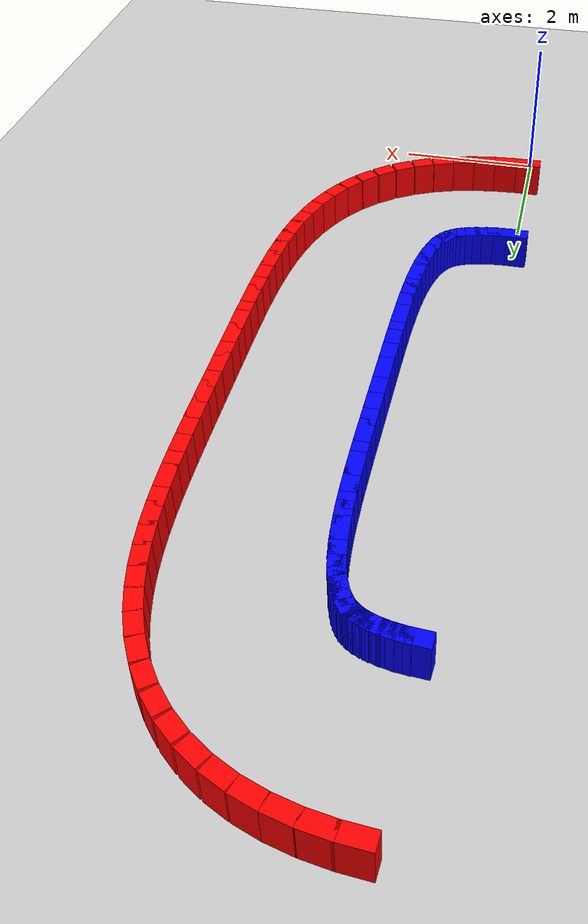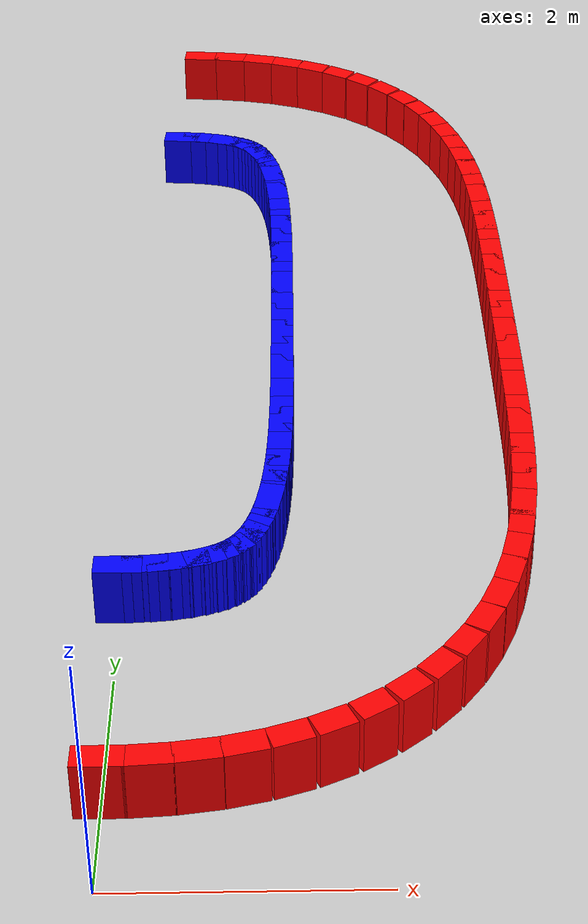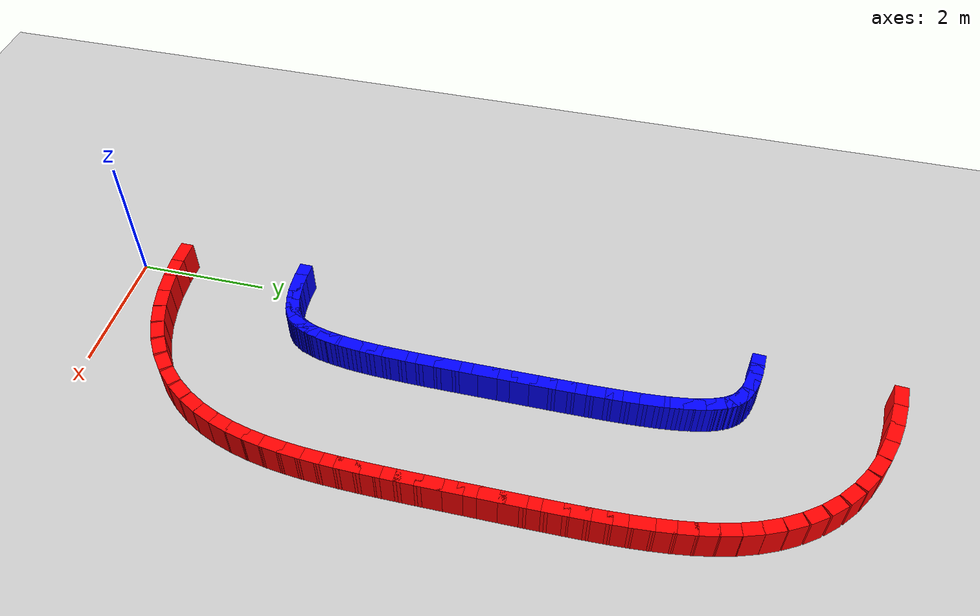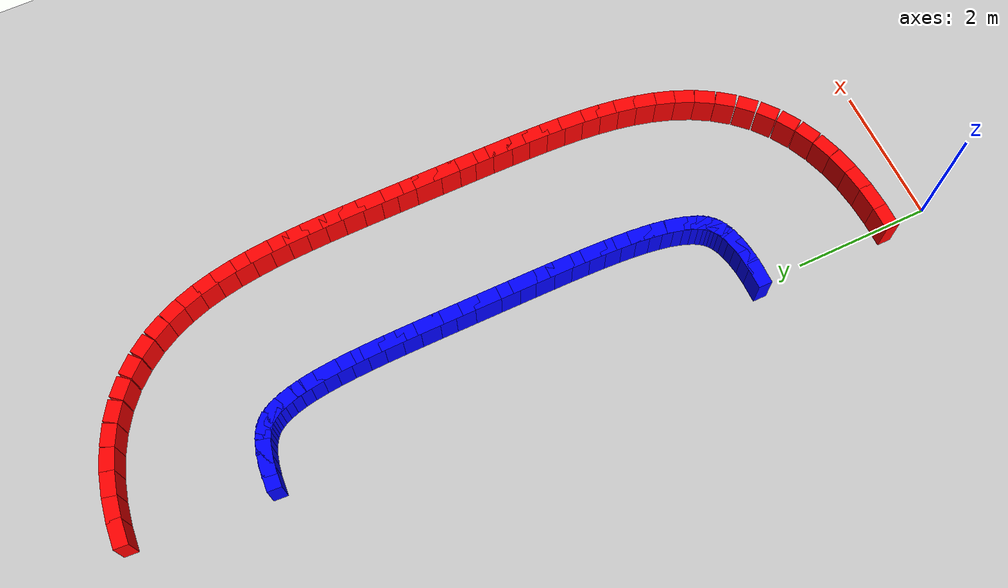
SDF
<sdf version="1.9">
 <world name="kidney_track">
  <model name="ground_plane">
   <static>true</static>
   <link name="link">
    <collision name="collision">
     <geometry><plane><normal>0 0 1</normal><size>100 100</size></plane></geometry>
    </collision>
    <visual name="visual">
     <geometry><plane><normal>0 0 1</normal><size>100 100</size></plane></geometry>
     <material><ambient>0.8 0.8 0.8 1</ambient><diffuse>0.8 0.8 0.8 1</diffuse></material>
    </visual>
   </link>
  </model>
  <model name="track">
   <static>true</static>
   <link name="outer_0">
    <pose>3.2500 6.2500 0.25 0 0 1.5708</pose>
    <collision name="col"><geometry><box><size>0.3826 0.2 0.5</size></box></geometry></collision>
    <visual name="vis">
     <geometry><box><size>0.3826 0.2 0.5</size></box></geometry>
     <material><ambient>1 0 0 1</ambient></material>
    </visual>
   </link>
   <link name="inner_0">
    <pose>1.2500 6.2500 0.25 0 0 1.5708</pose>
    <collision name="col"><geometry><box><size>0.3826 0.2 0.5</size></box></geometry></collision>
    <visual name="vis">
     <geometry><box><size>0.3826 0.2 0.5</size></box></geometry>
     <material><ambient>0 0 1 1</ambient></material>
    </visual>
   </link>
   <link name="outer_1">
    <pose>3.2500 6.5327 0.25 0 0 1.5709</pose>
    <collision name="col"><geometry><box><size>0.3814 0.2 0.5</size></box></geometry></collision>
    <visual name="vis">
     <geometry><box><size>0.3814 0.2 0.5</size></box></geometry>
     <material><ambient>1 0 0 1</ambient></material>
    </visual>
   </link>
   <link name="inner_1">
    <pose>1.2500 6.5324 0.25 0 0 1.5709</pose>
    <collision name="col"><geometry><box><size>0.3814 0.2 0.5</size></box></geometry></collision>
    <visual name="vis">
     <geometry><box><size>0.3814 0.2 0.5</size></box></geometry>
     <material><ambient>0 0 1 1</ambient></material>
    </visual>
   </link>
   <link name="outer_2">
    <pose>3.2499 6.8150 0.25 0 0 1.5718</pose>
    <collision name="col"><geometry><box><size>0.3792 0.2 0.5</size></box></geometry></collision>
    <visual name="vis">
     <geometry><box><size>0.3792 0.2 0.5</size></box></geometry>
     <material><ambient>1 0 0 1</ambient></material>
    </visual>
   </link>
   <link name="inner_2">
    <pose>1.2499 6.8130 0.25 0 0 1.5718</pose>
    <collision name="col"><geometry><box><size>0.3792 0.2 0.5</size></box></geometry></collision>
    <visual name="vis">
     <geometry><box><size>0.3792 0.2 0.5</size></box></geometry>
     <material><ambient>0 0 1 1</ambient></material>
    </visual>
   </link>
   <link name="outer_3">
    <pose>3.2493 7.0966 0.25 0 0 1.5742</pose>
    <collision name="col"><geometry><box><size>0.3759 0.2 0.5</size></box></geometry></collision>
    <visual name="vis">
     <geometry><box><size>0.3759 0.2 0.5</size></box></geometry>
     <material><ambient>1 0 0 1</ambient></material>
    </visual>
   </link>
   <link name="inner_3">
    <pose>1.2493 7.0898 0.25 0 0 1.5742</pose>
    <collision name="col"><geometry><box><size>0.3759 0.2 0.5</size></box></geometry></collision>
    <visual name="vis">
     <geometry><box><size>0.3759 0.2 0.5</size></box></geometry>
     <material><ambient>0 0 1 1</ambient></material>
    </visual>
   </link>
   <link name="outer_4">
    <pose>3.2477 7.3772 0.25 0 0 1.5789</pose>
    <collision name="col"><geometry><box><size>0.3715 0.2 0.5</size></box></geometry></collision>
    <visual name="vis">
     <geometry><box><size>0.3715 0.2 0.5</size></box></geometry>
     <material><ambient>1 0 0 1</ambient></material>
    </visual>
   </link>
   <link name="inner_4">
    <pose>1.2478 7.3610 0.25 0 0 1.5789</pose>
    <collision name="col"><geometry><box><size>0.3715 0.2 0.5</size></box></geometry></collision>
    <visual name="vis">
     <geometry><box><size>0.3715 0.2 0.5</size></box></geometry>
     <material><ambient>0 0 1 1</ambient></material>
    </visual>
   </link>
   <link name="outer_5">
    <pose>3.2445 7.6565 0.25 0 0 1.5867</pose>
    <collision name="col"><geometry><box><size>0.3660 0.2 0.5</size></box></geometry></collision>
    <visual name="vis">
     <geometry><box><size>0.3660 0.2 0.5</size></box></geometry>
     <material><ambient>1 0 0 1</ambient></material>
    </visual>
   </link>
   <link name="inner_5">
    <pose>1.2447 7.6247 0.25 0 0 1.5867</pose>
    <collision name="col"><geometry><box><size>0.3660 0.2 0.5</size></box></geometry></collision>
    <visual name="vis">
     <geometry><box><size>0.3660 0.2 0.5</size></box></geometry>
     <material><ambient>0 0 1 1</ambient></material>
    </visual>
   </link>
   <link name="outer_6">
    <pose>3.2385 7.9344 0.25 0 0 1.5986</pose>
    <collision name="col"><geometry><box><size>0.3596 0.2 0.5</size></box></geometry></collision>
    <visual name="vis">
     <geometry><box><size>0.3596 0.2 0.5</size></box></geometry>
     <material><ambient>1 0 0 1</ambient></material>
    </visual>
   </link>
   <link name="inner_6">
    <pose>1.2393 7.8787 0.25 0 0 1.5986</pose>
    <collision name="col"><geometry><box><size>0.3596 0.2 0.5</size></box></geometry></collision>
    <visual name="vis">
     <geometry><box><size>0.3596 0.2 0.5</size></box></geometry>
     <material><ambient>0 0 1 1</ambient></material>
    </visual>
   </link>
   <link name="outer_7">
    <pose>3.2286 8.2108 0.25 0 0 1.6156</pose>
    <collision name="col"><geometry><box><size>0.3523 0.2 0.5</size></box></geometry></collision>
    <visual name="vis">
     <geometry><box><size>0.3523 0.2 0.5</size></box></geometry>
     <material><ambient>1 0 0 1</ambient></material>
    </visual>
   </link>
   <link name="inner_7">
    <pose>1.2306 8.1212 0.25 0 0 1.6156</pose>
    <collision name="col"><geometry><box><size>0.3523 0.2 0.5</size></box></geometry></collision>
    <visual name="vis">
     <geometry><box><size>0.3523 0.2 0.5</size></box></geometry>
     <material><ambient>0 0 1 1</ambient></material>
    </visual>
   </link>
   <link name="outer_8">
    <pose>3.2133 8.4858 0.25 0 0 1.6387</pose>
    <collision name="col"><geometry><box><size>0.3442 0.2 0.5</size></box></geometry></collision>
    <visual name="vis">
     <geometry><box><size>0.3442 0.2 0.5</size></box></geometry>
     <material><ambient>1 0 0 1</ambient></material>
    </visual>
   </link>
   <link name="inner_8">
    <pose>1.2179 8.3500 0.25 0 0 1.6387</pose>
    <collision name="col"><geometry><box><size>0.3442 0.2 0.5</size></box></geometry></collision>
    <visual name="vis">
     <geometry><box><size>0.3442 0.2 0.5</size></box></geometry>
     <material><ambient>0 0 1 1</ambient></material>
    </visual>
   </link>
   <link name="outer_9">
    <pose>3.1906 8.7596 0.25 0 0 1.6693</pose>
    <collision name="col"><geometry><box><size>0.3354 0.2 0.5</size></box></geometry></collision>
    <visual name="vis">
     <geometry><box><size>0.3354 0.2 0.5</size></box></geometry>
     <material><ambient>1 0 0 1</ambient></material>
    </visual>
   </link>
   <link name="inner_9">
    <pose>1.2003 8.5629 0.25 0 0 1.6693</pose>
    <collision name="col"><geometry><box><size>0.3354 0.2 0.5</size></box></geometry></collision>
    <visual name="vis">
     <geometry><box><size>0.3354 0.2 0.5</size></box></geometry>
     <material><ambient>0 0 1 1</ambient></material>
    </visual>
   </link>
   <link name="outer_10">
    <pose>3.1584 9.0325 0.25 0 0 1.7087</pose>
    <collision name="col"><geometry><box><size>0.3263 0.2 0.5</size></box></geometry></collision>
    <visual name="vis">
     <geometry><box><size>0.3263 0.2 0.5</size></box></geometry>
     <material><ambient>1 0 0 1</ambient></material>
    </visual>
   </link>
   <link name="inner_10">
    <pose>1.1774 8.7576 0.25 0 0 1.7087</pose>
    <collision name="col"><geometry><box><size>0.3263 0.2 0.5</size></box></geometry></collision>
    <visual name="vis">
     <geometry><box><size>0.3263 0.2 0.5</size></box></geometry>
     <material><ambient>0 0 1 1</ambient></material>
    </visual>
   </link>
   <link name="outer_11">
    <pose>3.1140 9.3050 0.25 0 0 1.7584</pose>
    <collision name="col"><geometry><box><size>0.3172 0.2 0.5</size></box></geometry></collision>
    <visual name="vis">
     <geometry><box><size>0.3172 0.2 0.5</size></box></geometry>
     <material><ambient>1 0 0 1</ambient></material>
    </visual>
   </link>
   <link name="inner_11">
    <pose>1.1491 8.9319 0.25 0 0 1.7584</pose>
    <collision name="col"><geometry><box><size>0.3172 0.2 0.5</size></box></geometry></collision>
    <visual name="vis">
     <geometry><box><size>0.3172 0.2 0.5</size></box></geometry>
     <material><ambient>0 0 1 1</ambient></material>
    </visual>
   </link>
   <link name="outer_12">
    <pose>3.0538 9.5771 0.25 0 0 1.8201</pose>
    <collision name="col"><geometry><box><size>0.3083 0.2 0.5</size></box></geometry></collision>
    <visual name="vis">
     <geometry><box><size>0.3083 0.2 0.5</size></box></geometry>
     <material><ambient>1 0 0 1</ambient></material>
    </visual>
   </link>
   <link name="inner_12">
    <pose>1.1156 9.0838 0.25 0 0 1.8201</pose>
    <collision name="col"><geometry><box><size>0.3083 0.2 0.5</size></box></geometry></collision>
    <visual name="vis">
     <geometry><box><size>0.3083 0.2 0.5</size></box></geometry>
     <material><ambient>0 0 1 1</ambient></material>
    </visual>
   </link>
   <link name="outer_13">
    <pose>2.9740 9.8488 0.25 0 0 1.8949</pose>
    <collision name="col"><geometry><box><size>0.3003 0.2 0.5</size></box></geometry></collision>
    <visual name="vis">
     <geometry><box><size>0.3003 0.2 0.5</size></box></geometry>
     <material><ambient>1 0 0 1</ambient></material>
    </visual>
   </link>
   <link name="inner_13">
    <pose>1.0782 9.2119 0.25 0 0 1.8949</pose>
    <collision name="col"><geometry><box><size>0.3003 0.2 0.5</size></box></geometry></collision>
    <visual name="vis">
     <geometry><box><size>0.3003 0.2 0.5</size></box></geometry>
     <material><ambient>0 0 1 1</ambient></material>
    </visual>
   </link>
   <link name="outer_14">
    <pose>2.8701 10.1188 0.25 0 0 1.9839</pose>
    <collision name="col"><geometry><box><size>0.2937 0.2 0.5</size></box></geometry></collision>
    <visual name="vis">
     <geometry><box><size>0.2937 0.2 0.5</size></box></geometry>
     <material><ambient>1 0 0 1</ambient></material>
    </visual>
   </link>
   <link name="inner_14">
    <pose>1.0383 9.3159 0.25 0 0 1.9839</pose>
    <collision name="col"><geometry><box><size>0.2937 0.2 0.5</size></box></geometry></collision>
    <visual name="vis">
     <geometry><box><size>0.2937 0.2 0.5</size></box></geometry>
     <material><ambient>0 0 1 1</ambient></material>
    </visual>
   </link>
   <link name="outer_15">
    <pose>2.7374 10.3841 0.25 0 0 2.0869</pose>
    <collision name="col"><geometry><box><size>0.2891 0.2 0.5</size></box></geometry></collision>
    <visual name="vis">
     <geometry><box><size>0.2891 0.2 0.5</size></box></geometry>
     <material><ambient>1 0 0 1</ambient></material>
    </visual>
   </link>
   <link name="inner_15">
    <pose>0.9979 9.3971 0.25 0 0 2.0869</pose>
    <collision name="col"><geometry><box><size>0.2891 0.2 0.5</size></box></geometry></collision>
    <visual name="vis">
     <geometry><box><size>0.2891 0.2 0.5</size></box></geometry>
     <material><ambient>0 0 1 1</ambient></material>
    </visual>
   </link>
   <link name="outer_16">
    <pose>2.5723 10.6399 0.25 0 0 2.2023</pose>
    <collision name="col"><geometry><box><size>0.2871 0.2 0.5</size></box></geometry></collision>
    <visual name="vis">
     <geometry><box><size>0.2871 0.2 0.5</size></box></geometry>
     <material><ambient>1 0 0 1</ambient></material>
    </visual>
   </link>
   <link name="inner_16">
    <pose>0.9581 9.4591 0.25 0 0 2.2023</pose>
    <collision name="col"><geometry><box><size>0.2871 0.2 0.5</size></box></geometry></collision>
    <visual name="vis">
     <geometry><box><size>0.2871 0.2 0.5</size></box></geometry>
     <material><ambient>0 0 1 1</ambient></material>
    </visual>
   </link>
   <link name="outer_17">
    <pose>2.3733 10.8793 0.25 0 0 2.3267</pose>
    <collision name="col"><geometry><box><size>0.2882 0.2 0.5</size></box></geometry></collision>
    <visual name="vis">
     <geometry><box><size>0.2882 0.2 0.5</size></box></geometry>
     <material><ambient>1 0 0 1</ambient></material>
    </visual>
   </link>
   <link name="inner_17">
    <pose>0.9181 9.5074 0.25 0 0 2.3267</pose>
    <collision name="col"><geometry><box><size>0.2882 0.2 0.5</size></box></geometry></collision>
    <visual name="vis">
     <geometry><box><size>0.2882 0.2 0.5</size></box></geometry>
     <material><ambient>0 0 1 1</ambient></material>
    </visual>
   </link>
   <link name="outer_18">
    <pose>2.1419 11.0952 0.25 0 0 2.4551</pose>
    <collision name="col"><geometry><box><size>0.2926 0.2 0.5</size></box></geometry></collision>
    <visual name="vis">
     <geometry><box><size>0.2926 0.2 0.5</size></box></geometry>
     <material><ambient>1 0 0 1</ambient></material>
    </visual>
   </link>
   <link name="inner_18">
    <pose>0.8743 9.5482 0.25 0 0 2.4551</pose>
    <collision name="col"><geometry><box><size>0.2926 0.2 0.5</size></box></geometry></collision>
    <visual name="vis">
     <geometry><box><size>0.2926 0.2 0.5</size></box></geometry>
     <material><ambient>0 0 1 1</ambient></material>
    </visual>
   </link>
   <link name="outer_19">
    <pose>1.8826 11.2814 0.25 0 0 2.5819</pose>
    <collision name="col"><geometry><box><size>0.3003 0.2 0.5</size></box></geometry></collision>
    <visual name="vis">
     <geometry><box><size>0.3003 0.2 0.5</size></box></geometry>
     <material><ambient>1 0 0 1</ambient></material>
    </visual>
   </link>
   <link name="inner_19">
    <pose>0.8207 9.5866 0.25 0 0 2.5819</pose>
    <collision name="col"><geometry><box><size>0.3003 0.2 0.5</size></box></geometry></collision>
    <visual name="vis">
     <geometry><box><size>0.3003 0.2 0.5</size></box></geometry>
     <material><ambient>0 0 1 1</ambient></material>
    </visual>
   </link>
   <link name="outer_20">
    <pose>1.6012 11.4347 0.25 0 0 2.7021</pose>
    <collision name="col"><geometry><box><size>0.3111 0.2 0.5</size></box></geometry></collision>
    <visual name="vis">
     <geometry><box><size>0.3111 0.2 0.5</size></box></geometry>
     <material><ambient>1 0 0 1</ambient></material>
    </visual>
   </link>
   <link name="inner_20">
    <pose>0.7502 9.6248 0.25 0 0 2.7021</pose>
    <collision name="col"><geometry><box><size>0.3111 0.2 0.5</size></box></geometry></collision>
    <visual name="vis">
     <geometry><box><size>0.3111 0.2 0.5</size></box></geometry>
     <material><ambient>0 0 1 1</ambient></material>
    </visual>
   </link>
   <link name="outer_21">
    <pose>1.3033 11.5549 0.25 0 0 2.8123</pose>
    <collision name="col"><geometry><box><size>0.3244 0.2 0.5</size></box></geometry></collision>
    <visual name="vis">
     <geometry><box><size>0.3244 0.2 0.5</size></box></geometry>
     <material><ambient>1 0 0 1</ambient></material>
    </visual>
   </link>
   <link name="inner_21">
    <pose>0.6566 9.6624 0.25 0 0 2.8123</pose>
    <collision name="col"><geometry><box><size>0.3244 0.2 0.5</size></box></geometry></collision>
    <visual name="vis">
     <geometry><box><size>0.3244 0.2 0.5</size></box></geometry>
     <material><ambient>0 0 1 1</ambient></material>
    </visual>
   </link>
   <link name="outer_22">
    <pose>0.9927 11.6438 0.25 0 0 2.9110</pose>
    <collision name="col"><geometry><box><size>0.3397 0.2 0.5</size></box></geometry></collision>
    <visual name="vis">
     <geometry><box><size>0.3397 0.2 0.5</size></box></geometry>
     <material><ambient>1 0 0 1</ambient></material>
    </visual>
   </link>
   <link name="inner_22">
    <pose>0.5357 9.6968 0.25 0 0 2.9110</pose>
    <collision name="col"><geometry><box><size>0.3397 0.2 0.5</size></box></geometry></collision>
    <visual name="vis">
     <geometry><box><size>0.3397 0.2 0.5</size></box></geometry>
     <material><ambient>0 0 1 1</ambient></material>
    </visual>
   </link>
   <link name="outer_23">
    <pose>0.6716 11.7042 0.25 0 0 2.9982</pose>
    <collision name="col"><geometry><box><size>0.3564 0.2 0.5</size></box></geometry></collision>
    <visual name="vis">
     <geometry><box><size>0.3564 0.2 0.5</size></box></geometry>
     <material><ambient>1 0 0 1</ambient></material>
    </visual>
   </link>
   <link name="inner_23">
    <pose>0.3857 9.7248 0.25 0 0 2.9982</pose>
    <collision name="col"><geometry><box><size>0.3564 0.2 0.5</size></box></geometry></collision>
    <visual name="vis">
     <geometry><box><size>0.3564 0.2 0.5</size></box></geometry>
     <material><ambient>0 0 1 1</ambient></material>
    </visual>
   </link>
   <link name="outer_24">
    <pose>0.3407 11.7389 0.25 0 0 3.0746</pose>
    <collision name="col"><geometry><box><size>0.3738 0.2 0.5</size></box></geometry></collision>
    <visual name="vis">
     <geometry><box><size>0.3738 0.2 0.5</size></box></geometry>
     <material><ambient>1 0 0 1</ambient></material>
    </visual>
   </link>
   <link name="inner_24">
    <pose>0.2067 9.7434 0.25 0 0 3.0746</pose>
    <collision name="col"><geometry><box><size>0.3738 0.2 0.5</size></box></geometry></collision>
    <visual name="vis">
     <geometry><box><size>0.3738 0.2 0.5</size></box></geometry>
     <material><ambient>0 0 1 1</ambient></material>
    </visual>
   </link>
   <link name="outer_75">
    <pose>-0.0000 0.7500 0.25 0 0 0.0000</pose>
    <collision name="col"><geometry><box><size>0.3738 0.2 0.5</size></box></geometry></collision>
    <visual name="vis">
     <geometry><box><size>0.3738 0.2 0.5</size></box></geometry>
     <material><ambient>1 0 0 1</ambient></material>
    </visual>
   </link>
   <link name="inner_75">
    <pose>-0.0000 2.7500 0.25 0 0 0.0000</pose>
    <collision name="col"><geometry><box><size>0.3738 0.2 0.5</size></box></geometry></collision>
    <visual name="vis">
     <geometry><box><size>0.3738 0.2 0.5</size></box></geometry>
     <material><ambient>0 0 1 1</ambient></material>
    </visual>
   </link>
   <link name="outer_76">
    <pose>0.3407 0.7611 0.25 0 0 0.0670</pose>
    <collision name="col"><geometry><box><size>0.3564 0.2 0.5</size></box></geometry></collision>
    <visual name="vis">
     <geometry><box><size>0.3564 0.2 0.5</size></box></geometry>
     <material><ambient>1 0 0 1</ambient></material>
    </visual>
   </link>
   <link name="inner_76">
    <pose>0.2067 2.7566 0.25 0 0 0.0670</pose>
    <collision name="col"><geometry><box><size>0.3564 0.2 0.5</size></box></geometry></collision>
    <visual name="vis">
     <geometry><box><size>0.3564 0.2 0.5</size></box></geometry>
     <material><ambient>0 0 1 1</ambient></material>
    </visual>
   </link>
   <link name="outer_77">
    <pose>0.6716 0.7958 0.25 0 0 0.1434</pose>
    <collision name="col"><geometry><box><size>0.3397 0.2 0.5</size></box></geometry></collision>
    <visual name="vis">
     <geometry><box><size>0.3397 0.2 0.5</size></box></geometry>
     <material><ambient>1 0 0 1</ambient></material>
    </visual>
   </link>
   <link name="inner_77">
    <pose>0.3857 2.7752 0.25 0 0 0.1434</pose>
    <collision name="col"><geometry><box><size>0.3397 0.2 0.5</size></box></geometry></collision>
    <visual name="vis">
     <geometry><box><size>0.3397 0.2 0.5</size></box></geometry>
     <material><ambient>0 0 1 1</ambient></material>
    </visual>
   </link>
   <link name="outer_78">
    <pose>0.9927 0.8562 0.25 0 0 0.2306</pose>
    <collision name="col"><geometry><box><size>0.3244 0.2 0.5</size></box></geometry></collision>
    <visual name="vis">
     <geometry><box><size>0.3244 0.2 0.5</size></box></geometry>
     <material><ambient>1 0 0 1</ambient></material>
    </visual>
   </link>
   <link name="inner_78">
    <pose>0.5357 2.8032 0.25 0 0 0.2306</pose>
    <collision name="col"><geometry><box><size>0.3244 0.2 0.5</size></box></geometry></collision>
    <visual name="vis">
     <geometry><box><size>0.3244 0.2 0.5</size></box></geometry>
     <material><ambient>0 0 1 1</ambient></material>
    </visual>
   </link>
   <link name="outer_79">
    <pose>1.3033 0.9451 0.25 0 0 0.3293</pose>
    <collision name="col"><geometry><box><size>0.3111 0.2 0.5</size></box></geometry></collision>
    <visual name="vis">
     <geometry><box><size>0.3111 0.2 0.5</size></box></geometry>
     <material><ambient>1 0 0 1</ambient></material>
    </visual>
   </link>
   <link name="inner_79">
    <pose>0.6566 2.8376 0.25 0 0 0.3293</pose>
    <collision name="col"><geometry><box><size>0.3111 0.2 0.5</size></box></geometry></collision>
    <visual name="vis">
     <geometry><box><size>0.3111 0.2 0.5</size></box></geometry>
     <material><ambient>0 0 1 1</ambient></material>
    </visual>
   </link>
   <link name="outer_80">
    <pose>1.6012 1.0653 0.25 0 0 0.4395</pose>
    <collision name="col"><geometry><box><size>0.3003 0.2 0.5</size></box></geometry></collision>
    <visual name="vis">
     <geometry><box><size>0.3003 0.2 0.5</size></box></geometry>
     <material><ambient>1 0 0 1</ambient></material>
    </visual>
   </link>
   <link name="inner_80">
    <pose>0.7502 2.8752 0.25 0 0 0.4395</pose>
    <collision name="col"><geometry><box><size>0.3003 0.2 0.5</size></box></geometry></collision>
    <visual name="vis">
     <geometry><box><size>0.3003 0.2 0.5</size></box></geometry>
     <material><ambient>0 0 1 1</ambient></material>
    </visual>
   </link>
   <link name="outer_81">
    <pose>1.8826 1.2186 0.25 0 0 0.5597</pose>
    <collision name="col"><geometry><box><size>0.2926 0.2 0.5</size></box></geometry></collision>
    <visual name="vis">
     <geometry><box><size>0.2926 0.2 0.5</size></box></geometry>
     <material><ambient>1 0 0 1</ambient></material>
    </visual>
   </link>
   <link name="inner_81">
    <pose>0.8207 2.9134 0.25 0 0 0.5597</pose>
    <collision name="col"><geometry><box><size>0.2926 0.2 0.5</size></box></geometry></collision>
    <visual name="vis">
     <geometry><box><size>0.2926 0.2 0.5</size></box></geometry>
     <material><ambient>0 0 1 1</ambient></material>
    </visual>
   </link>
   <link name="outer_82">
    <pose>2.1419 1.4048 0.25 0 0 0.6865</pose>
    <collision name="col"><geometry><box><size>0.2882 0.2 0.5</size></box></geometry></collision>
    <visual name="vis">
     <geometry><box><size>0.2882 0.2 0.5</size></box></geometry>
     <material><ambient>1 0 0 1</ambient></material>
    </visual>
   </link>
   <link name="inner_82">
    <pose>0.8743 2.9518 0.25 0 0 0.6865</pose>
    <collision name="col"><geometry><box><size>0.2882 0.2 0.5</size></box></geometry></collision>
    <visual name="vis">
     <geometry><box><size>0.2882 0.2 0.5</size></box></geometry>
     <material><ambient>0 0 1 1</ambient></material>
    </visual>
   </link>
   <link name="outer_83">
    <pose>2.3733 1.6207 0.25 0 0 0.8149</pose>
    <collision name="col"><geometry><box><size>0.2871 0.2 0.5</size></box></geometry></collision>
    <visual name="vis">
     <geometry><box><size>0.2871 0.2 0.5</size></box></geometry>
     <material><ambient>1 0 0 1</ambient></material>
    </visual>
   </link>
   <link name="inner_83">
    <pose>0.9181 2.9926 0.25 0 0 0.8149</pose>
    <collision name="col"><geometry><box><size>0.2871 0.2 0.5</size></box></geometry></collision>
    <visual name="vis">
     <geometry><box><size>0.2871 0.2 0.5</size></box></geometry>
     <material><ambient>0 0 1 1</ambient></material>
    </visual>
   </link>
   <link name="outer_84">
    <pose>2.5723 1.8601 0.25 0 0 0.9393</pose>
    <collision name="col"><geometry><box><size>0.2891 0.2 0.5</size></box></geometry></collision>
    <visual name="vis">
     <geometry><box><size>0.2891 0.2 0.5</size></box></geometry>
     <material><ambient>1 0 0 1</ambient></material>
    </visual>
   </link>
   <link name="inner_84">
    <pose>0.9581 3.0409 0.25 0 0 0.9393</pose>
    <collision name="col"><geometry><box><size>0.2891 0.2 0.5</size></box></geometry></collision>
    <visual name="vis">
     <geometry><box><size>0.2891 0.2 0.5</size></box></geometry>
     <material><ambient>0 0 1 1</ambient></material>
    </visual>
   </link>
   <link name="outer_85">
    <pose>2.7374 2.1159 0.25 0 0 1.0547</pose>
    <collision name="col"><geometry><box><size>0.2937 0.2 0.5</size></box></geometry></collision>
    <visual name="vis">
     <geometry><box><size>0.2937 0.2 0.5</size></box></geometry>
     <material><ambient>1 0 0 1</ambient></material>
    </visual>
   </link>
   <link name="inner_85">
    <pose>0.9979 3.1029 0.25 0 0 1.0547</pose>
    <collision name="col"><geometry><box><size>0.2937 0.2 0.5</size></box></geometry></collision>
    <visual name="vis">
     <geometry><box><size>0.2937 0.2 0.5</size></box></geometry>
     <material><ambient>0 0 1 1</ambient></material>
    </visual>
   </link>
   <link name="outer_86">
    <pose>2.8701 2.3812 0.25 0 0 1.1577</pose>
    <collision name="col"><geometry><box><size>0.3003 0.2 0.5</size></box></geometry></collision>
    <visual name="vis">
     <geometry><box><size>0.3003 0.2 0.5</size></box></geometry>
     <material><ambient>1 0 0 1</ambient></material>
    </visual>
   </link>
   <link name="inner_86">
    <pose>1.0383 3.1841 0.25 0 0 1.1577</pose>
    <collision name="col"><geometry><box><size>0.3003 0.2 0.5</size></box></geometry></collision>
    <visual name="vis">
     <geometry><box><size>0.3003 0.2 0.5</size></box></geometry>
     <material><ambient>0 0 1 1</ambient></material>
    </visual>
   </link>
   <link name="outer_87">
    <pose>2.9740 2.6512 0.25 0 0 1.2467</pose>
    <collision name="col"><geometry><box><size>0.3083 0.2 0.5</size></box></geometry></collision>
    <visual name="vis">
     <geometry><box><size>0.3083 0.2 0.5</size></box></geometry>
     <material><ambient>1 0 0 1</ambient></material>
    </visual>
   </link>
   <link name="inner_87">
    <pose>1.0782 3.2881 0.25 0 0 1.2467</pose>
    <collision name="col"><geometry><box><size>0.3083 0.2 0.5</size></box></geometry></collision>
    <visual name="vis">
     <geometry><box><size>0.3083 0.2 0.5</size></box></geometry>
     <material><ambient>0 0 1 1</ambient></material>
    </visual>
   </link>
   <link name="outer_88">
    <pose>3.0538 2.9229 0.25 0 0 1.3215</pose>
    <collision name="col"><geometry><box><size>0.3172 0.2 0.5</size></box></geometry></collision>
    <visual name="vis">
     <geometry><box><size>0.3172 0.2 0.5</size></box></geometry>
     <material><ambient>1 0 0 1</ambient></material>
    </visual>
   </link>
   <link name="inner_88">
    <pose>1.1156 3.4162 0.25 0 0 1.3215</pose>
    <collision name="col"><geometry><box><size>0.3172 0.2 0.5</size></box></geometry></collision>
    <visual name="vis">
     <geometry><box><size>0.3172 0.2 0.5</size></box></geometry>
     <material><ambient>0 0 1 1</ambient></material>
    </visual>
   </link>
   <link name="outer_89">
    <pose>3.1140 3.1950 0.25 0 0 1.3832</pose>
    <collision name="col"><geometry><box><size>0.3263 0.2 0.5</size></box></geometry></collision>
    <visual name="vis">
     <geometry><box><size>0.3263 0.2 0.5</size></box></geometry>
     <material><ambient>1 0 0 1</ambient></material>
    </visual>
   </link>
   <link name="inner_89">
    <pose>1.1491 3.5681 0.25 0 0 1.3832</pose>
    <collision name="col"><geometry><box><size>0.3263 0.2 0.5</size></box></geometry></collision>
    <visual name="vis">
     <geometry><box><size>0.3263 0.2 0.5</size></box></geometry>
     <material><ambient>0 0 1 1</ambient></material>
    </visual>
   </link>
   <link name="outer_90">
    <pose>3.1584 3.4675 0.25 0 0 1.4329</pose>
    <collision name="col"><geometry><box><size>0.3354 0.2 0.5</size></box></geometry></collision>
    <visual name="vis">
     <geometry><box><size>0.3354 0.2 0.5</size></box></geometry>
     <material><ambient>1 0 0 1</ambient></material>
    </visual>
   </link>
   <link name="inner_90">
    <pose>1.1774 3.7424 0.25 0 0 1.4329</pose>
    <collision name="col"><geometry><box><size>0.3354 0.2 0.5</size></box></geometry></collision>
    <visual name="vis">
     <geometry><box><size>0.3354 0.2 0.5</size></box></geometry>
     <material><ambient>0 0 1 1</ambient></material>
    </visual>
   </link>
   <link name="outer_91">
    <pose>3.1906 3.7404 0.25 0 0 1.4723</pose>
    <collision name="col"><geometry><box><size>0.3442 0.2 0.5</size></box></geometry></collision>
    <visual name="vis">
     <geometry><box><size>0.3442 0.2 0.5</size></box></geometry>
     <material><ambient>1 0 0 1</ambient></material>
    </visual>
   </link>
   <link name="inner_91">
    <pose>1.2003 3.9371 0.25 0 0 1.4723</pose>
    <collision name="col"><geometry><box><size>0.3442 0.2 0.5</size></box></geometry></collision>
    <visual name="vis">
     <geometry><box><size>0.3442 0.2 0.5</size></box></geometry>
     <material><ambient>0 0 1 1</ambient></material>
    </visual>
   </link>
   <link name="outer_92">
    <pose>3.2133 4.0142 0.25 0 0 1.5029</pose>
    <collision name="col"><geometry><box><size>0.3523 0.2 0.5</size></box></geometry></collision>
    <visual name="vis">
     <geometry><box><size>0.3523 0.2 0.5</size></box></geometry>
     <material><ambient>1 0 0 1</ambient></material>
    </visual>
   </link>
   <link name="inner_92">
    <pose>1.2179 4.1500 0.25 0 0 1.5029</pose>
    <collision name="col"><geometry><box><size>0.3523 0.2 0.5</size></box></geometry></collision>
    <visual name="vis">
     <geometry><box><size>0.3523 0.2 0.5</size></box></geometry>
     <material><ambient>0 0 1 1</ambient></material>
    </visual>
   </link>
   <link name="outer_93">
    <pose>3.2286 4.2892 0.25 0 0 1.5260</pose>
    <collision name="col"><geometry><box><size>0.3596 0.2 0.5</size></box></geometry></collision>
    <visual name="vis">
     <geometry><box><size>0.3596 0.2 0.5</size></box></geometry>
     <material><ambient>1 0 0 1</ambient></material>
    </visual>
   </link>
   <link name="inner_93">
    <pose>1.2306 4.3788 0.25 0 0 1.5260</pose>
    <collision name="col"><geometry><box><size>0.3596 0.2 0.5</size></box></geometry></collision>
    <visual name="vis">
     <geometry><box><size>0.3596 0.2 0.5</size></box></geometry>
     <material><ambient>0 0 1 1</ambient></material>
    </visual>
   </link>
   <link name="outer_94">
    <pose>3.2385 4.5656 0.25 0 0 1.5430</pose>
    <collision name="col"><geometry><box><size>0.3660 0.2 0.5</size></box></geometry></collision>
    <visual name="vis">
     <geometry><box><size>0.3660 0.2 0.5</size></box></geometry>
     <material><ambient>1 0 0 1</ambient></material>
    </visual>
   </link>
   <link name="inner_94">
    <pose>1.2393 4.6213 0.25 0 0 1.5430</pose>
    <collision name="col"><geometry><box><size>0.3660 0.2 0.5</size></box></geometry></collision>
    <visual name="vis">
     <geometry><box><size>0.3660 0.2 0.5</size></box></geometry>
     <material><ambient>0 0 1 1</ambient></material>
    </visual>
   </link>
   <link name="outer_95">
    <pose>3.2445 4.8435 0.25 0 0 1.5549</pose>
    <collision name="col"><geometry><box><size>0.3715 0.2 0.5</size></box></geometry></collision>
    <visual name="vis">
     <geometry><box><size>0.3715 0.2 0.5</size></box></geometry>
     <material><ambient>1 0 0 1</ambient></material>
    </visual>
   </link>
   <link name="inner_95">
    <pose>1.2447 4.8753 0.25 0 0 1.5549</pose>
    <collision name="col"><geometry><box><size>0.3715 0.2 0.5</size></box></geometry></collision>
    <visual name="vis">
     <geometry><box><size>0.3715 0.2 0.5</size></box></geometry>
     <material><ambient>0 0 1 1</ambient></material>
    </visual>
   </link>
   <link name="outer_96">
    <pose>3.2477 5.1228 0.25 0 0 1.5627</pose>
    <collision name="col"><geometry><box><size>0.3759 0.2 0.5</size></box></geometry></collision>
    <visual name="vis">
     <geometry><box><size>0.3759 0.2 0.5</size></box></geometry>
     <material><ambient>1 0 0 1</ambient></material>
    </visual>
   </link>
   <link name="inner_96">
    <pose>1.2478 5.1390 0.25 0 0 1.5627</pose>
    <collision name="col"><geometry><box><size>0.3759 0.2 0.5</size></box></geometry></collision>
    <visual name="vis">
     <geometry><box><size>0.3759 0.2 0.5</size></box></geometry>
     <material><ambient>0 0 1 1</ambient></material>
    </visual>
   </link>
   <link name="outer_97">
    <pose>3.2493 5.4034 0.25 0 0 1.5674</pose>
    <collision name="col"><geometry><box><size>0.3792 0.2 0.5</size></box></geometry></collision>
    <visual name="vis">
     <geometry><box><size>0.3792 0.2 0.5</size></box></geometry>
     <material><ambient>1 0 0 1</ambient></material>
    </visual>
   </link>
   <link name="inner_97">
    <pose>1.2493 5.4102 0.25 0 0 1.5674</pose>
    <collision name="col"><geometry><box><size>0.3792 0.2 0.5</size></box></geometry></collision>
    <visual name="vis">
     <geometry><box><size>0.3792 0.2 0.5</size></box></geometry>
     <material><ambient>0 0 1 1</ambient></material>
    </visual>
   </link>
   <link name="outer_98">
    <pose>3.2499 5.6850 0.25 0 0 1.5698</pose>
    <collision name="col"><geometry><box><size>0.3814 0.2 0.5</size></box></geometry></collision>
    <visual name="vis">
     <geometry><box><size>0.3814 0.2 0.5</size></box></geometry>
     <material><ambient>1 0 0 1</ambient></material>
    </visual>
   </link>
   <link name="inner_98">
    <pose>1.2499 5.6870 0.25 0 0 1.5698</pose>
    <collision name="col"><geometry><box><size>0.3814 0.2 0.5</size></box></geometry></collision>
    <visual name="vis">
     <geometry><box><size>0.3814 0.2 0.5</size></box></geometry>
     <material><ambient>0 0 1 1</ambient></material>
    </visual>
   </link>
   <link name="outer_99">
    <pose>3.2500 5.9673 0.25 0 0 1.5707</pose>
    <collision name="col"><geometry><box><size>0.3826 0.2 0.5</size></box></geometry></collision>
    <visual name="vis">
     <geometry><box><size>0.3826 0.2 0.5</size></box></geometry>
     <material><ambient>1 0 0 1</ambient></material>
    </visual>
   </link>
   <link name="inner_99">
    <pose>1.2500 5.9676 0.25 0 0 1.5707</pose>
    <collision name="col"><geometry><box><size>0.3826 0.2 0.5</size></box></geometry></collision>
    <visual name="vis">
     <geometry><box><size>0.3826 0.2 0.5</size></box></geometry>
     <material><ambient>0 0 1 1</ambient></material>
    </visual>
   </link>
  </model>
 </world>
</sdf>
